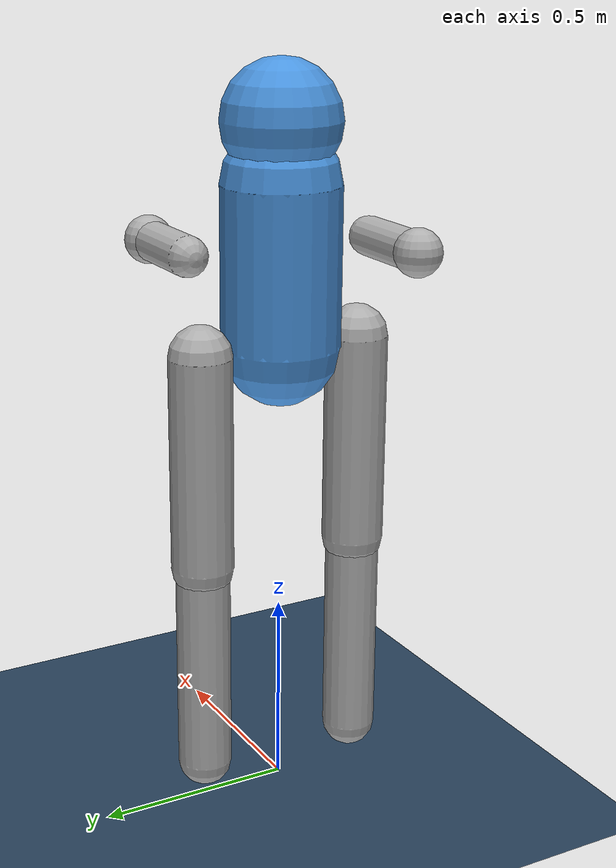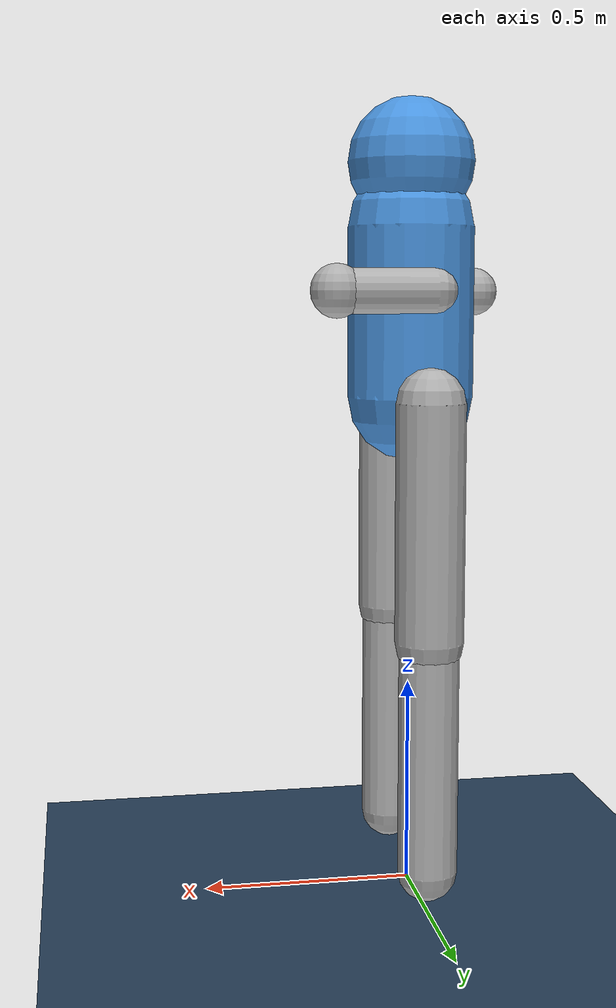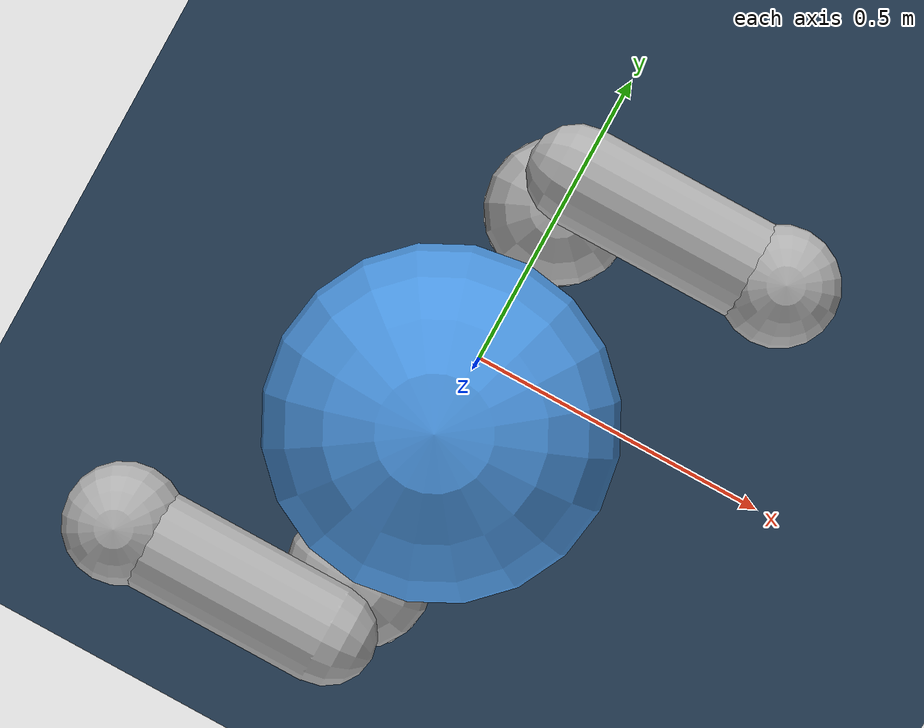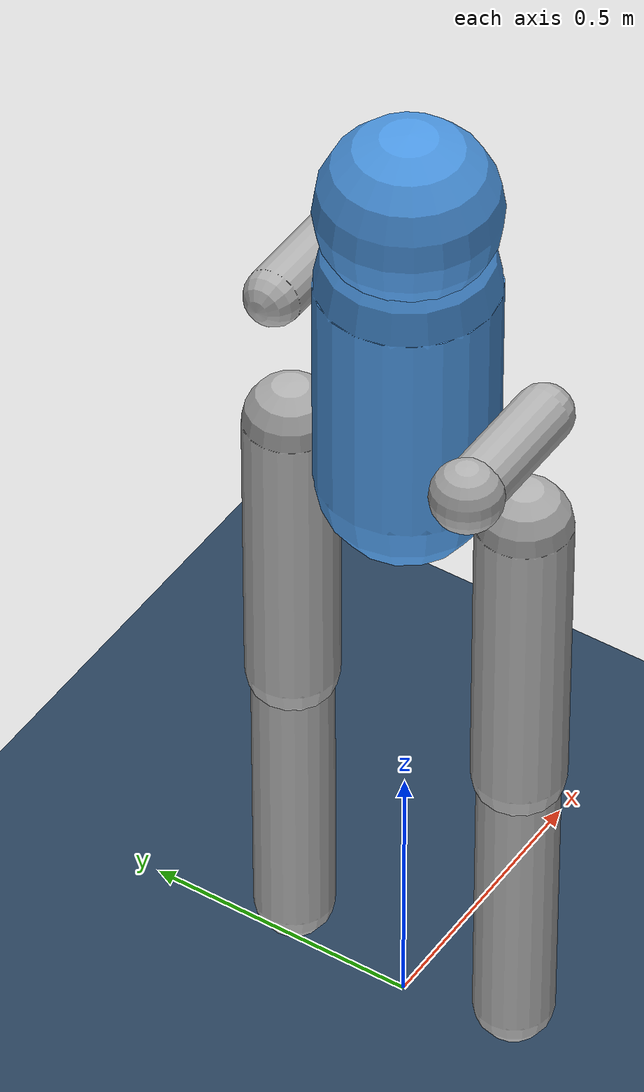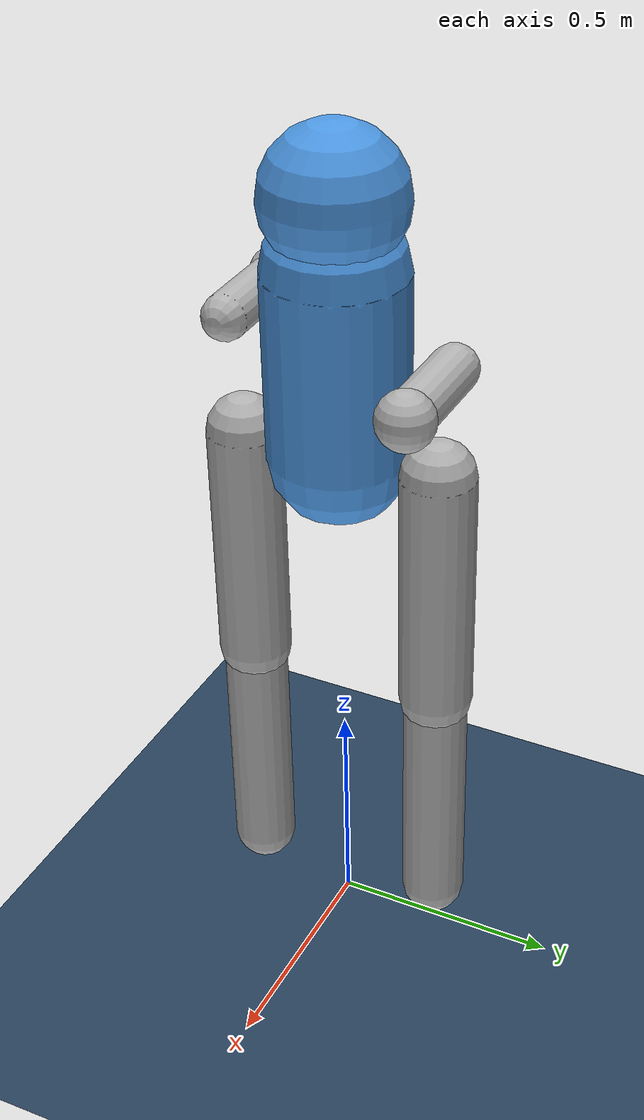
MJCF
<mujoco model="SimpleHumanoid">
  <option timestep="0.005" gravity="0 0 -9.81"/>
  <visual>
    <map force="0.1" zfar="30"/>
  </visual>
  <asset>
    <texture name="grid" type="2d" builtin="checker" width="512" height="512" rgb1=".1 .2 .3" rgb2=".2 .3 .4"/>
    <material name="grid" texture="grid" texrepeat="1 1" texuniform="true" reflectance=".2"/>
    <material name="body" rgba="0.3 0.6 0.9 1"/>
    <material name="limb" rgba="0.7 0.7 0.7 1"/>
  </asset>

  <worldbody>
    <geom name="floor" type="plane" size="5 5 0.1" material="grid"/>
    <light pos="0 -5 3" dir="0 5 -3" diffuse="1 1 1"/>

    <body name="torso" pos="0 0 1.3">
      <freejoint/>
      <geom type="capsule" size="0.15 0.25" fromto="0 0 -0.1 0 0 0.3" material="body"/>

      <!-- 头部 -->
      <body name="head" pos="0 0 0.45">
        <geom type="sphere" size="0.15" material="body"/>
      </body>

      <!-- 右臂 → 向外展开，像正常人 -->
      <body name="upper_arm_R" pos="0 -0.25 0.15">
        <joint axis="0 1 0" range="-1.5 1.5"/>
        <geom type="capsule" size="0.05 0.22" fromto="0 0 0 -0.2 0 0" material="limb"/>
        <body name="hand_R" pos="-0.22 0 0">
          <geom type="sphere" size="0.06" material="limb"/>
        </body>
      </body>

      <!-- 左臂 → 向外展开，像正常人 -->
      <body name="upper_arm_L" pos="0 0.25 0.15">
        <joint axis="0 1 0" range="-1.5 1.5"/>
        <geom type="capsule" size="0.05 0.22" fromto="0 0 0 0.2 0 0" material="limb"/>
        <body name="hand_L" pos="0.22 0 0">
          <geom type="sphere" size="0.06" material="limb"/>
        </body>
      </body>

      <!-- 右腿 → 向外分开，站姿稳定 -->
      <body name="thigh_R" pos="0 -0.22 -0.1">
        <joint axis="0 1 0" range="-1.5 1.5"/>
        <geom type="capsule" size="0.08 0.27" fromto="0 0 0 0 0 -0.55" material="limb"/>
        <body name="leg_R" pos="0 0 -0.55">
          <joint axis="0 1 0" range="-2.5 0"/>
          <geom type="capsule" size="0.07 0.27" fromto="0 0 0 0 0 -0.55" material="limb"/>
        </body>
      </body>

      <!-- 左腿 → 向外分开，站姿稳定 -->
      <body name="thigh_L" pos="0 0.22 -0.1">
        <joint axis="0 1 0" range="-1.5 1.5"/>
        <geom type="capsule" size="0.08 0.27" fromto="0 0 0 0 0 -0.55" material="limb"/>
        <body name="leg_L" pos="0 0 -0.55">
          <joint axis="0 1 0" range="-2.5 0"/>
          <geom type="capsule" size="0.07 0.27" fromto="0 0 0 0 0 -0.55" material="limb"/>
        </body>
      </body>
    </body>
  </worldbody>
</mujoco>
